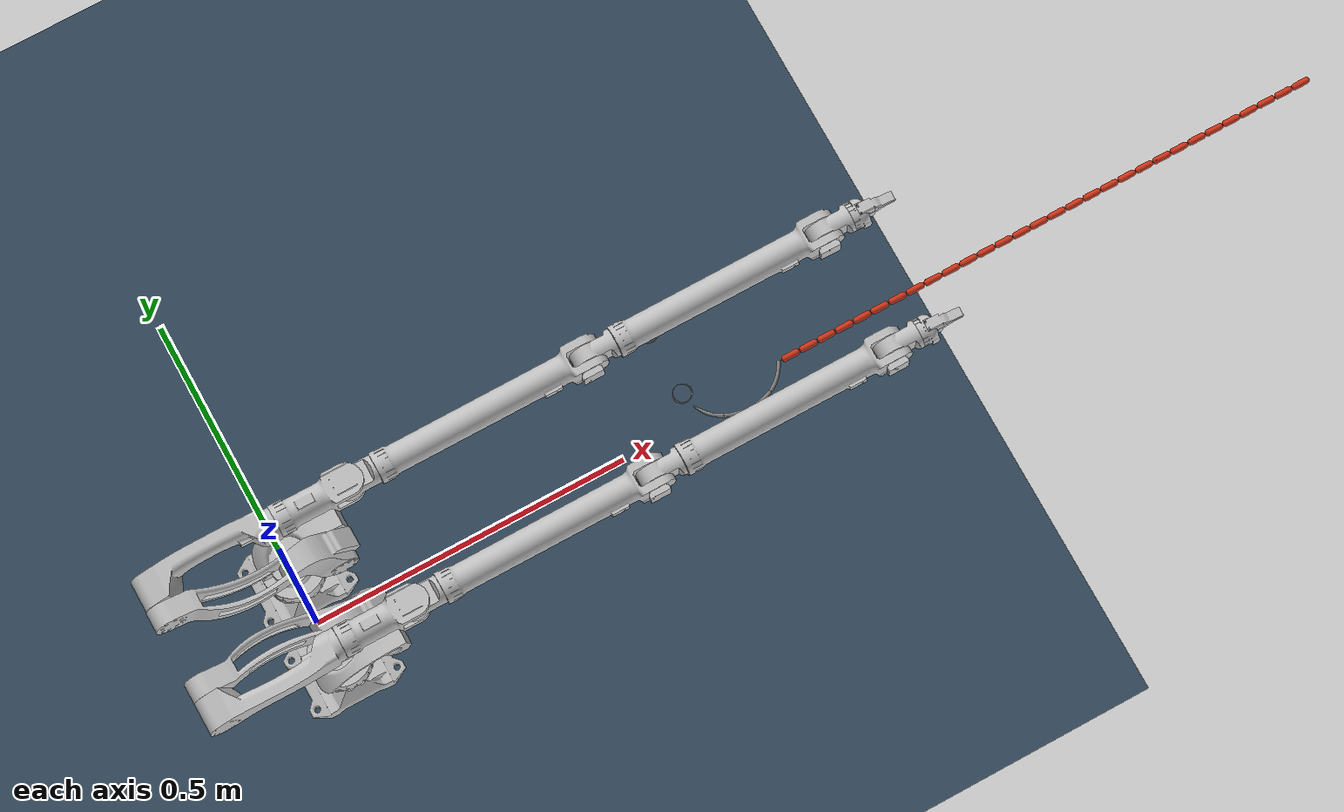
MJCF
<?xml version="1.0" encoding="utf-8"?>
<mujoco>
	<compiler angle="radian" coordinate="local" meshdir="../stls/clamp" texturedir="../textures"></compiler>
	<option timestep="0.002" iterations="20" apirate="200">
		<flag warmstart="enable"></flag>
	</option>

	<include file="shared.xml"></include>

	<asset>
		<include file="shared_asset.xml"></include>

        <texture type="skybox" builtin="gradient" rgb1="0.94 0.97 0.97" rgb2="0.94 0.97 0.97" width="32" height="32"/>
        <texture name="texplane" type="2d" builtin="checker" rgb1=".2 .3 .4" rgb2="0.18 0.25 0.29" width="612" height="612"/>
        <texture name="texgeom" type="cube" builtin="flat" mark="none" width="127" height="1278" rgb1="0.95 0.95 0.95" rgb2="0.95 0.95 0.95" markrgb="1 1 1" random="0.01"/>

		<material name="robot_mat" texture="texgeom" shininess="0.0" specular="0.0" reflectance="0"/>
        <material name="floor_mat" specular="0" shininess="0.0" reflectance="0" texture="texplane" texrepeat="5 5"/>/>
	</asset>

	<worldbody>
		<light directional="true" ambient="0.2 0.2 0.2" diffuse="0.8 0.8 0.8" specular="0.3 0.3 0.3" castshadow="false" pos="0 1 4" dir="0 0 -1" name="light0"></light>

		<geom name="floor0" pos="0 0 0" size="1 1 1" type="plane" condim="3" material="floor_mat"></geom>
		<body name="floor0" pos="1 1 0"></body>

		<include file="robot.xml"></include>
		<include file="needle.xml"></include>

		<body name="target0:in" pos="0.6 0 0.2">
			<geom name="in" type="mesh" mesh="target0:hole" size="1 1" condim="1"></geom>
			<site name="target0:in_center" pos="0 0 0" rgba="1 0 0 0" size="0.013"></site>
		</body>

		<body name="target0:out" pos="0.6 0.1 0.2">
			<geom name="out" type="mesh" mesh="target0:hole" size="1 1" condim="1"></geom>
			<site name="target0:out_center" pos="0 0 0" rgba="1 0 0 0" size="0.013"></site>
		</body>

	</worldbody>

</mujoco>

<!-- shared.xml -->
<mujoco>

    <!-- Classes -->

    <default>
        <default class="robot0:asset_class">
            <geom friction="1 0.005 0.001" condim="3" margin="0.0005" contype="1" conaffinity="1"></geom>
            <joint limited="true" damping="0.1" armature="0.001" margin="0.01" frictionloss="0.001"></joint>
            <site size="0.005" rgba="0.4 0.9 0.4 1"></site>
            <general ctrllimited="true" forcelimited="true"></general>
        </default>

        <default class="robot0:touch">
            <geom rgba="0.75 0.75 0.75 1" contype="1" conaffinity="0"></geom>
        </default>

        <default class="robot0:visual">
            <geom rgba="0.75 0.75 0.75 1" contype="0" conaffinity="0" type="mesh"></geom>
        </default>

    </default>

    <!-- Actuators -->
    <actuator>
        <position name="robot0:A_r_J1" class="robot0:asset_class" joint="robot0:r_J1" ctrlrange="-1.5708 1.5708" kp="5" forcerange="-4.785 4.785"></position>
        <position name="robot0:A_r_J2" class="robot0:asset_class" joint="robot0:r_J2" ctrllimited="false" kp="5" forcerange="-4.785 4.785"></position>
        <position name="robot0:A_r_J3" class="robot0:asset_class" joint="robot0:r_J3" ctrlrange="-1.5708 1.5708" kp="5" forcerange="-4.785 4.785"></position>
        <position name="robot0:A_r_J4" class="robot0:asset_class" joint="robot0:r_J4" ctrllimited="false" kp="5" forcerange="-4.785 4.785"></position>
        <position name="robot0:A_r_J5" class="robot0:asset_class" joint="robot0:r_J5" ctrlrange="-1.5708 1.5708" kp="5" forcerange="-4.785 4.785"></position>
        <position name="robot0:A_r_J6" class="robot0:asset_class" joint="robot0:r_J6" ctrllimited="false" kp="5" forcerange="-4.785 4.785"></position>
        <position name="robot0:A_r_J7_up" class="robot0:asset_class" joint="robot0:r_J7_up" ctrlrange="-3.14 0" kp="5" forcerange="-4.785 4.785"></position>
        <position name="robot0:A_r_J7_bottom" class="robot0:asset_class" joint="robot0:r_J7_bottom" ctrlrange="0 0.34" kp="5" forcerange="-4.785 4.785"></position>

        <position name="robot0:A_l_J1" class="robot0:asset_class" joint="robot0:l_J1" ctrlrange="-1.5708 1.5708" kp="5" forcerange="-4.785 4.785"></position>
        <position name="robot0:A_l_J2" class="robot0:asset_class" joint="robot0:l_J2" ctrllimited="false" kp="5" forcerange="-4.785 4.785"></position>
        <position name="robot0:A_l_J3" class="robot0:asset_class" joint="robot0:l_J3" ctrlrange="-1.5708 1.5708" kp="5" forcerange="-4.785 4.785"></position>
        <position name="robot0:A_l_J4" class="robot0:asset_class" joint="robot0:l_J4" ctrllimited="false" kp="5" forcerange="-4.785 4.785"></position>
        <position name="robot0:A_l_J5" class="robot0:asset_class" joint="robot0:l_J5" ctrlrange="-1.5708 1.5708" kp="5" forcerange="-4.785 4.785"></position>
        <position name="robot0:A_l_J6" class="robot0:asset_class" joint="robot0:l_J6" ctrllimited="false" kp="5" forcerange="-4.785 4.785"></position>
        <position name="robot0:A_l_J7_up" class="robot0:asset_class" joint="robot0:l_J7_up" ctrlrange="-3.14 0" kp="5" forcerange="-4.785 4.785"></position>
        <position name="robot0:A_l_J7_bottom" class="robot0:asset_class" joint="robot0:l_J7_bottom" ctrlrange="0 0.34" kp="5" forcerange="-4.785 4.785"></position>
    </actuator>

    <!-- Contacts -->
    <contact>
        <exclude body1="object:needle" body2="B_0"></exclude>
        <exclude body1="B_0" body2="B_1"></exclude>
        <exclude body1="B_1" body2="B_2"></exclude>
        <exclude body1="B_2" body2="B_3"></exclude>
        <exclude body1="B_3" body2="B_4"></exclude>
        <exclude body1="B_4" body2="B_5"></exclude>
        <exclude body1="B_5" body2="B_6"></exclude>
        <exclude body1="B_6" body2="B_7"></exclude>
        <exclude body1="B_7" body2="B_8"></exclude>
        <exclude body1="B_8" body2="B_9"></exclude>
        <exclude body1="B_9" body2="B_10"></exclude>
        <exclude body1="B_10" body2="B_11"></exclude>
        <exclude body1="B_11" body2="B_12"></exclude>
        <exclude body1="B_12" body2="B_13"></exclude>
        <exclude body1="B_13" body2="B_14"></exclude>
        <exclude body1="B_14" body2="B_15"></exclude>
        <exclude body1="B_15" body2="B_16"></exclude>
        <exclude body1="B_16" body2="B_17"></exclude>
        <exclude body1="B_17" body2="B_18"></exclude>
        <exclude body1="B_18" body2="B_19"></exclude>
        <exclude body1="B_19" body2="B_20"></exclude>
        <exclude body1="B_20" body2="B_21"></exclude>
        <exclude body1="B_21" body2="B_22"></exclude>
        <exclude body1="B_22" body2="B_23"></exclude>
        <exclude body1="B_23" body2="B_24"></exclude>
        <exclude body1="B_24" body2="B_25"></exclude>
        <exclude body1="B_25" body2="B_26"></exclude>
        <exclude body1="B_26" body2="B_27"></exclude>
        <exclude body1="B_27" body2="B_28"></exclude>
        <exclude body1="B_28" body2="B_29"></exclude>
    </contact>

</mujoco>

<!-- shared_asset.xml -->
<mujoco>
        <mesh file="r_roots.stl" scale="0.1 0.1 0.1" name="robot0:r_roots"></mesh>
	<mesh file="r_base.stl" scale="0.1 0.1 0.1" name="robot0:r_base"></mesh>
        <mesh file="r_trunk.stl" scale="0.1 0.1 0.1" name="robot0:r_trunk"></mesh>
	<mesh file="r_hip.stl" scale="0.1 0.1 0.1" name="robot0:r_hip"></mesh>
        <mesh file="r_body.stl" scale="0.1 0.1 0.1" name="robot0:r_body"></mesh>
        <mesh file="r_shoulder.stl" scale="0.1 0.1 0.1" name="robot0:r_shoulder"></mesh>
        <mesh file="r_upper_arm.stl" scale="0.1 0.1 0.1" name="robot0:r_upper_arm"></mesh>
        <mesh file="r_elbow.stl" scale="0.1 0.1 0.1" name="robot0:r_elbow"></mesh>
        <mesh file="r_forearm.stl" scale="0.1 0.1 0.1" name="robot0:r_forearm"></mesh>
        <mesh file="r_wrist.stl" scale="0.1 0.1 0.1" name="robot0:r_wrist"></mesh>
        <mesh file="r_hand.stl" scale="0.1 0.1 0.1" name="robot0:r_hand"></mesh>
	<mesh file="r_t_clamp.stl" scale="0.1 0.1 0.1" name="robot0:r_t_clamp"></mesh>
        <mesh file="r_b_clamp.stl" scale="0.1 0.1 0.1" name="robot0:r_b_clamp"></mesh>

        <mesh file="l_roots.stl" scale="0.1 0.1 0.1" name="robot0:l_roots"></mesh>
        <mesh file="l_base.stl" scale="0.1 0.1 0.1" name="robot0:l_base"></mesh>
        <mesh file="l_trunk.stl" scale="0.1 0.1 0.1" name="robot0:l_trunk"></mesh>
        <mesh file="l_hip.stl" scale="0.1 0.1 0.1" name="robot0:l_hip"></mesh>
        <mesh file="l_body.stl" scale="0.1 0.1 0.1" name="robot0:l_body"></mesh>
        <mesh file="l_shoulder.stl" scale="0.1 0.1 0.1" name="robot0:l_shoulder"></mesh>
        <mesh file="l_upper_arm.stl" scale="0.1 0.1 0.1" name="robot0:l_upper_arm"></mesh>
        <mesh file="l_elbow.stl" scale="0.1 0.1 0.1" name="robot0:l_elbow"></mesh>
        <mesh file="l_forearm.stl" scale="0.1 0.1 0.1" name="robot0:l_forearm"></mesh>
        <mesh file="l_wrist.stl" scale="0.1 0.1 0.1" name="robot0:l_wrist"></mesh>
        <mesh file="l_hand.stl" scale="0.1 0.1 0.1" name="robot0:l_hand"></mesh>
        <mesh file="l_t_clamp.stl" scale="0.1 0.1 0.1" name="robot0:l_t_clamp"></mesh>
        <mesh file="l_b_clamp.stl" scale="0.1 0.1 0.1" name="robot0:l_b_clamp"></mesh>

        <mesh file="tip.stl" scale="0.1 0.1 0.1" name="object0:needle_tip"></mesh>
        <mesh file="handle.stl" scale="0.1 0.1 0.1" name="object0:needle_handle"></mesh>
        <mesh file="first_curve.stl" scale="0.1 0.1 0.1" name="object0:needle_first_curve"></mesh>
        <mesh file="second_curve.stl" scale="0.1 0.1 0.1" name="object0:needle_second_curve"></mesh>

        <mesh file="hole.stl" scale="0.1 0.1 0.1" name="target0:hole"></mesh>
</mujoco>

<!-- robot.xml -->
<mujoco>

	<!-- Right Arm -->
	<body childclass="robot0:asset_class" name="robot0:r_roots">
		<geom mesh="robot0:r_roots" mass="0.1" name="robot0:r_roots" material="robot_mat" class="robot0:visual"></geom>

		<body name="robot0:r_base">
			<geom mesh="robot0:r_base" mass="0.1" name="robot0:r_base" material="robot_mat" class="robot0:visual"></geom>

			<body name="robot0:r_trunk">
				<geom mesh="robot0:r_trunk" mass="0.1" name="robot0:r_trunk" material="robot_mat" class="robot0:visual"></geom>

				<body name="robot0:r_hip">
					<geom mesh="robot0:r_hip" mass="0.1" name="robot0:r_hip" material="robot_mat" class="robot0:visual"></geom>

					<body name="robot0:r_body">
						<geom mesh="robot0:r_body" mass="0.1" name="robot0:r_body" material="robot_mat" class="robot0:visual"></geom>

						<body name="robot0:r_shoulder">
							<joint name="robot0:r_J1" type="hinge" axis="0 0 1" pos="0.125 -0.098 0.23" damping="0.5" armature="0.005" range="-1.5708 1.5708"/>
							<geom class="robot0:visual" mass="0.001" name="robot0:r_shoulder" material="robot_mat" mesh="robot0:r_shoulder"></geom>
							<body name="robot0:r_upper_arm">
								<geom mesh="robot0:r_upper_arm" name="robot0:r_upper_arm" material="robot_mat" class="robot0:visual"></geom>

								<joint name="robot0:r_J2" type="hinge" axis="1 0 0" pos="0.16 -0.098 0.265" damping="0.5" armature="0.005" limited="false"/>
								<body name="robot0:r_elbow">
									<geom mesh="robot0:r_elbow" mass="0.001" name="robot0:r_elbow" material="robot_mat" class="robot0:visual"></geom>

									<joint name="robot0:r_J3" type="hinge" axis="0 1 0" pos="0.501 -0.13 0.271" damping="0.5" armature="0.005" range="-1.5708 1.5708"/>
									<body name="robot0:r_forearm">
										<geom mesh="robot0:r_forearm" mass="0.001" name="robot0:r_forearm" material="robot_mat" class="robot0:visual"></geom>

										<joint name="robot0:r_J4" type="hinge" axis="1 0 0" pos="0.515 -0.098 0.265" damping="0.5" armature="0.005" limited="false"/>
										<body name="robot0:r_wrist">
											<geom mesh="robot0:r_wrist" mass="0.001" name="robot0:r_wrist" material="robot_mat" class="robot0:visual"></geom>

											<joint name="robot0:r_J5" type="hinge" axis="0 1 0" pos="0.874 -0.13 0.268" damping="0.5" armature="0.005" range="-1.5708 1.5708"/>
											<body name="robot0:r_hand">
												<geom mesh="robot0:r_hand" mass="0.001" name="robot0:r_hand" material="robot_mat" class="robot0:visual"></geom>

												<joint name="robot0:r_J6" type="hinge" axis="1 0 0" pos="0.9 -0.098 0.265" damping="0.5" armature="0.005" limited="false"/>

												<body name="robot0:r_t_clamp">
													<geom mesh="robot0:r_t_clamp" mass="0.001" name="robot0:r_t_clamp" condim="4" friction="1 0.05 0.01" material="robot_mat" class="robot0:visual"></geom>
													<geom class="robot0:touch" name="robot0:C_r_t_clamp" type="capsule" pos="0.973 -0.099 0.275" size="0.01 0.01" euler="0 -1.5708 0" rgba="0.75 0.75 0.75 0"></geom>
													<joint name="robot0:r_J7_up" type="hinge" axis="0 1 0" pos="0.93 -0.13 0.271" damping="0.5" armature="0.005" range="-0.34 0"/>
												</body>

												<body name="robot0:r_b_clamp">
													<geom mesh="robot0:r_b_clamp" mass="0.001" name="robot0:r_b_clamp" condim="4" friction="1 0.05 0.01" material="robot_mat" class="robot0:visual"></geom>
													<geom class="robot0:touch" name="robot0:C_r_b_clamp" type="capsule" pos="0.973 -0.099 0.255" size="0.01 0.01" euler="0 -1.5708 0" rgba="0.75 0.75 0.75 0"></geom>
													<joint name="robot0:r_J7_bottom" type="hinge" axis="0 1 0" pos="0.93 -0.13 0.271" damping="0.5" armature="0.005" range="0 0.34"/>
												</body>
											</body>
										</body>
									</body>
								</body>
							</body>
						</body>
					</body>
				</body>
			</body>
		</body>
	</body>

	<!-- Left Arm -->
	<body childclass="robot0:asset_class" name="robot0:l_roots">
		<geom mesh="robot0:l_roots" mass="0.1" name="robot0:l_roots" material="robot_mat" class="robot0:visual"></geom>

		<body name="robot0:l_base">
			<geom mesh="robot0:l_base" mass="0.1" name="robot0:l_base" material="robot_mat" class="robot0:visual"></geom>

			<body name="robot0:l_trunk">
				<geom mesh="robot0:l_trunk" mass="0.1" name="robot0:l_trunk" material="robot_mat" class="robot0:visual"></geom>

				<body name="robot0:l_hip">
					<geom mesh="robot0:l_hip" mass="0.1" name="robot0:l_hip" material="robot_mat" class="robot0:visual"></geom>

					<body name="robot0:l_body">
						<geom mesh="robot0:l_body" mass="0.1" name="robot0:l_body" material="robot_mat" class="robot0:visual"></geom>

						<body name="robot0:l_shoulder">
							<joint name="robot0:l_J1" type="hinge" axis="0 0 1" pos="0.125 0.098 0.23" damping="0.5" armature="0.005" range="-1.5708 1.5708"/>
							<geom class="robot0:visual" mass="0.001" name="robot0:l_shoulder" material="robot_mat" mesh="robot0:l_shoulder"></geom>
							<body name="robot0:l_upper_arm">
								<geom mesh="robot0:l_upper_arm" name="robot0:l_upper_arm" material="robot_mat" class="robot0:visual"></geom>

								<joint name="robot0:l_J2" type="hinge" axis="1 0 0" pos="0.16 0.098 0.265" damping="0.5" armature="0.005" limited="false"/>
								<body name="robot0:l_elbow">
									<geom mesh="robot0:l_elbow" mass="0.001" name="robot0:l_elbow" material="robot_mat" class="robot0:visual"></geom>

									<joint name="robot0:l_J3" type="hinge" axis="0 1 0" pos="0.501 0.08 0.271" damping="0.5" armature="0.005" range="-1.5708 1.5708"/>
									<body name="robot0:l_forearm">
										<geom mesh="robot0:l_forearm" mass="0.001" name="robot0:l_forearm" material="robot_mat" class="robot0:visual"></geom>

										<joint name="robot0:l_J4" type="hinge" axis="1 0 0" pos="0.515 0.098 0.265" damping="0.5" armature="0.005" limited="false"/>
										<body name="robot0:l_wrist">
											<geom mesh="robot0:l_wrist" mass="0.001" name="robot0:l_wrist" material="robot_mat" class="robot0:visual"></geom>

											<joint name="robot0:l_J5" type="hinge" axis="0 1 0" pos="0.874 0.08 0.268" damping="0.5" armature="0.005" range="-1.5708 1.5708"/>
											<body name="robot0:l_hand">
												<geom mesh="robot0:l_hand" mass="0.001" name="robot0:l_hand" material="robot_mat" class="robot0:visual"></geom>

												<joint name="robot0:l_J6" type="hinge" axis="1 0 0" pos="0.9 0.098 0.265" damping="0.5" armature="0.005" limited="false"/>

												<body name="robot0:l_t_clamp">
													<geom mesh="robot0:l_t_clamp" mass="0.001" name="robot0:l_t_clamp" condim="4" friction="1 0.05 0.01" material="robot_mat" class="robot0:visual"></geom>
													<geom class="robot0:touch" name="robot0:C_l_t_clamp" type="capsule" pos="0.973 0.099 0.275" size="0.01 0.01" euler="0 -1.5708 0" rgba="0.75 0.75 0.75 0"></geom>
													<joint name="robot0:l_J7_up" type="hinge" axis="0 1 0" pos="0.93 0.08 0.271" damping="0.5" armature="0.005" range="-0.34 0"/>
												</body>

												<body name="robot0:l_b_clamp">
													<geom mesh="robot0:l_b_clamp" mass="0.001" name="robot0:l_b_clamp" condim="4" friction="1 0.05 0.01" material="robot_mat" class="robot0:visual"></geom>
													<geom class="robot0:touch" name="robot0:C_l_b_clamp" type="capsule" pos="0.973 0.099 0.255" size="0.01 0.01" euler="0 -1.5708 0" rgba="0.75 0.75 0.75 0"></geom>
													<joint name="robot0:l_J7_bottom" type="hinge" axis="0 1 0" pos="0.93 0.08 0.271" damping="0.5" armature="0.005" range="0 0.34"/>
												</body>
											</body>
										</body>
									</body>
								</body>
							</body>
						</body>
					</body>
				</body>
			</body>
		</body>
	</body>

</mujoco>

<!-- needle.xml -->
<mujoco>
	<body name="object:needle" pos="0.7 0 0">
		<joint type="free" name="object:joint"/>
		<geom name="object:handle" type="mesh" mesh="object0:needle_handle" size="1 1" mass="0.001" condim="1"></geom>
		<geom name="object:first_curve" type="mesh" mesh="object0:needle_first_curve" mass="0.001" size="1 1" condim="1"></geom>
		<geom name="object:second_curve" type="mesh" mesh="object0:needle_second_curve" mass="0.001" size="1 1" condim="1"></geom>
		<geom name="object:tip" type="mesh" mesh="object0:needle_tip" size="1 1" mass="0.001" condim="1"></geom>

		<!-- Rope for MuJoCo 2.0 -->

		<!-- Rope for MuJoCo <= 1.5 -->
		<body name="B_0">
			<joint type="hinge" damping="0.0025" axis="0 1 0" pos="0.075 0.020 0"></joint>
			<joint type="hinge" damping="0.0025" axis="0 0 1" pos="0.075 0.020 0"></joint>
			<geom type="capsule" size="0.005 0.01" rgba=".8 .2 .1 1" mass="0.0001" pos="0.090 0.020 0" euler="0 1.5708 0"/>
			<body name="B_1">
				<joint type="hinge" damping="0.0025" axis="0 1 0" pos="0.105 0.020 0"></joint>
				<joint type="hinge" damping="0.0025" axis="0 0 1" pos="0.105 0.020 0"></joint>
				<geom type="capsule" size="0.005 0.01" rgba=".8 .2 .1 1" mass="0.0001" pos="0.12 0.020 0" euler="0 1.5708 0"/>
				<body name="B_2">
					<joint type="hinge" damping="0.0025" axis="0 1 0" pos="0.135 0.020 0"></joint>
					<joint type="hinge" damping="0.0025" axis="0 0 1" pos="0.135 0.020 0"></joint>
					<geom type="capsule" size="0.005 0.01" rgba=".8 .2 .1 1" mass="0.0001" pos="0.15 0.020 0" euler="0 1.5708 0"/>
					<body name="B_3">
						<joint type="hinge" damping="0.0025" axis="0 1 0" pos="0.165 0.020 0"></joint>
						<joint type="hinge" damping="0.0025" axis="0 0 1" pos="0.165 0.020 0"></joint>
						<geom type="capsule" size="0.005 0.01" rgba=".8 .2 .1 1" mass="0.0001" pos="0.18 0.020 0" euler="0 1.5708 0"/>
						<body name="B_4">
							<joint type="hinge" damping="0.0025" axis="0 1 0" pos="0.195 0.020 0"></joint>
							<joint type="hinge" damping="0.0025" axis="0 0 1" pos="0.195 0.020 0"></joint>
							<geom type="capsule" size="0.005 0.01" rgba=".8 .2 .1 1" mass="0.0001" pos="0.21 0.020 0" euler="0 1.5708 0"/>
							<body name="B_5">
								<joint type="hinge" damping="0.0025" axis="0 1 0" pos="0.225 0.020 0"></joint>
								<joint type="hinge" damping="0.0025" axis="0 0 1" pos="0.225 0.020 0"></joint>
								<geom type="capsule" size="0.005 0.01" rgba=".8 .2 .1 1" mass="0.0001" pos="0.24 0.020 0" euler="0 1.5708 0"/>
								<body name="B_6">
									<joint type="hinge" damping="0.0025" axis="0 1 0" pos="0.255 0.020 0"></joint>
									<joint type="hinge" damping="0.0025" axis="0 0 1" pos="0.255 0.020 0"></joint>
									<geom type="capsule" size="0.005 0.01" rgba=".8 .2 .1 1" mass="0.0001" pos="0.27 0.020 0" euler="0 1.5708 0"/>
									<body name="B_7">
										<joint type="hinge" damping="0.0025" axis="0 1 0" pos="0.285 0.020 0"></joint>
										<joint type="hinge" damping="0.0025" axis="0 0 1" pos="0.285 0.020 0"></joint>
										<geom type="capsule" size="0.005 0.01" rgba=".8 .2 .1 1" mass="0.0001" pos="0.30 0.020 0" euler="0 1.5708 0"/>
										<body name="B_8">
											<joint type="hinge" damping="0.0025" axis="0 1 0" pos="0.315 0.020 0"></joint>
											<joint type="hinge" damping="0.0025" axis="0 0 1" pos="0.315 0.020 0"></joint>
											<geom type="capsule" size="0.005 0.01" rgba=".8 .2 .1 1" mass="0.0001" pos="0.33 0.020 0" euler="0 1.5708 0"/>
											<body name="B_9">
												<joint type="hinge" damping="0.0025" axis="0 1 0" pos="0.335 0.020 0"></joint>
												<joint type="hinge" damping="0.0025" axis="0 0 1" pos="0.335 0.020 0"></joint>
												<geom type="capsule" size="0.005 0.01" rgba=".8 .2 .1 1" mass="0.0001" pos="0.36 0.020 0" euler="0 1.5708 0"/>
												<body name="B_10">
													<joint type="hinge" damping="0.0025" axis="0 1 0" pos="0.365 0.020 0"></joint>
													<joint type="hinge" damping="0.0025" axis="0 0 1" pos="0.365 0.020 0"></joint>
													<geom type="capsule" size="0.005 0.01" rgba=".8 .2 .1 1" mass="0.0001" pos="0.39 0.020 0" euler="0 1.5708 0"/>
													<body name="B_11">
														<joint type="hinge" damping="0.0025" axis="0 1 0" pos="0.395 0.020 0"></joint>
														<joint type="hinge" damping="0.0025" axis="0 0 1" pos="0.395 0.020 0"></joint>
														<geom type="capsule" size="0.005 0.01" rgba=".8 .2 .1 1" mass="0.0001" pos="0.42 0.020 0" euler="0 1.5708 0"/>
														<body name="B_12">
															<joint type="hinge" damping="0.0025" axis="0 1 0" pos="0.425 0.020 0"></joint>
															<joint type="hinge" damping="0.0025" axis="0 0 1" pos="0.425 0.020 0"></joint>
															<geom type="capsule" size="0.005 0.01" rgba=".8 .2 .1 1" mass="0.0001" pos="0.45 0.020 0" euler="0 1.5708 0"/>
															<body name="B_13">
																<joint type="hinge" damping="0.0025" axis="0 1 0" pos="0.455 0.020 0"></joint>
																<joint type="hinge" damping="0.0025" axis="0 0 1" pos="0.455 0.020 0"></joint>
																<geom type="capsule" size="0.005 0.01" rgba=".8 .2 .1 1" mass="0.0001" pos="0.48 0.020 0" euler="0 1.5708 0"/>
																<body name="B_14">
																	<joint type="hinge" damping="0.0025" axis="0 1 0" pos="0.485 0.020 0"></joint>
																	<joint type="hinge" damping="0.0025" axis="0 0 1" pos="0.485 0.020 0"></joint>
																	<geom type="capsule" size="0.005 0.01" rgba=".8 .2 .1 1" mass="0.0001" pos="0.51 0.020 0" euler="0 1.5708 0"/>
																	<body name="B_15">
																		<joint type="hinge" damping="0.0025" axis="0 1 0" pos="0.515 0.020 0"></joint>
																		<joint type="hinge" damping="0.0025" axis="0 0 1" pos="0.515 0.020 0"></joint>
																		<geom type="capsule" size="0.005 0.01" rgba=".8 .2 .1 1" mass="0.0001" pos="0.54 0.020 0" euler="0 1.5708 0"/>
																		<body name="B_16">
																			<joint type="hinge" damping="0.0025" axis="0 1 0" pos="0.545 0.020 0"></joint>
																			<joint type="hinge" damping="0.0025" axis="0 0 1" pos="0.545 0.020 0"></joint>
																			<geom type="capsule" size="0.005 0.01" rgba=".8 .2 .1 1" mass="0.0001" pos="0.57 0.020 0" euler="0 1.5708 0"/>
																			<body name="B_17">
																				<joint type="hinge" damping="0.0025" axis="0 1 0" pos="0.575 0.020 0"></joint>
																				<joint type="hinge" damping="0.0025" axis="0 0 1" pos="0.575 0.020 0"></joint>
																				<geom type="capsule" size="0.005 0.01" rgba=".8 .2 .1 1" mass="0.0001" pos="0.60 0.020 0" euler="0 1.5708 0"/>
																				<body name="B_18">
																					<joint type="hinge" damping="0.0025" axis="0 1 0" pos="0.605 0.020 0"></joint>
																					<joint type="hinge" damping="0.0025" axis="0 0 1" pos="0.605 0.020 0"></joint>
																					<geom type="capsule" size="0.005 0.01" rgba=".8 .2 .1 1" mass="0.0001" pos="0.63 0.020 0" euler="0 1.5708 0"/>
																					<body name="B_19">
																						<joint type="hinge" damping="0.0025" axis="0 1 0" pos="0.635 0.020 0"></joint>
																						<joint type="hinge" damping="0.0025" axis="0 0 1" pos="0.635 0.020 0"></joint>
																						<geom type="capsule" size="0.005 0.01" rgba=".8 .2 .1 1" mass="0.0001" pos="0.66 0.020 0" euler="0 1.5708 0"/>
																						<body name="B_20">
																							<joint type="hinge" damping="0.0025" axis="0 1 0" pos="0.665 0.020 0"></joint>
																							<joint type="hinge" damping="0.0025" axis="0 0 1" pos="0.665 0.020 0"></joint>
																							<geom type="capsule" size="0.005 0.01" rgba=".8 .2 .1 1" mass="0.0001" pos="0.69 0.020 0" euler="0 1.5708 0"/>
																							<body name="B_21">
																								<joint type="hinge" damping="0.0025" axis="0 1 0" pos="0.695 0.020 0"></joint>
																								<joint type="hinge" damping="0.0025" axis="0 0 1" pos="0.695 0.020 0"></joint>
																								<geom type="capsule" size="0.005 0.01" rgba=".8 .2 .1 1" mass="0.0001" pos="0.72 0.020 0" euler="0 1.5708 0"/>
																								<body name="B_22">
																									<joint type="hinge" damping="0.0025" axis="0 1 0" pos="0.725 0.020 0"></joint>
																									<joint type="hinge" damping="0.0025" axis="0 0 1" pos="0.725 0.020 0"></joint>
																									<geom type="capsule" size="0.005 0.01" rgba=".8 .2 .1 1" mass="0.0001" pos="0.75 0.020 0" euler="0 1.5708 0"/>
																									<body name="B_23">
																										<joint type="hinge" damping="0.0025" axis="0 1 0" pos="0.755 0.020 0"></joint>
																										<joint type="hinge" damping="0.0025" axis="0 0 1" pos="0.755 0.020 0"></joint>
																										<geom type="capsule" size="0.005 0.01" rgba=".8 .2 .1 1" mass="0.0001" pos="0.78 0.020 0" euler="0 1.5708 0"/>
																										<body name="B_24">
																											<joint type="hinge" damping="0.0025" axis="0 1 0" pos="0.785 0.020 0"></joint>
																											<joint type="hinge" damping="0.0025" axis="0 0 1" pos="0.785 0.020 0"></joint>
																											<geom type="capsule" size="0.005 0.01" rgba=".8 .2 .1 1" mass="0.0001" pos="0.81 0.020 0" euler="0 1.5708 0"/>
																											<body name="B_25">
																												<joint type="hinge" damping="0.0025" axis="0 1 0" pos="0.815 0.020 0"></joint>
																												<joint type="hinge" damping="0.0025" axis="0 0 1" pos="0.815 0.020 0"></joint>
																												<geom type="capsule" size="0.005 0.01" rgba=".8 .2 .1 1" mass="0.0001" pos="0.84 0.020 0" euler="0 1.5708 0"/>
																												<body name="B_26">
																													<joint type="hinge" damping="0.0025" axis="0 1 0" pos="0.845 0.020 0"></joint>
																													<joint type="hinge" damping="0.0025" axis="0 0 1" pos="0.845 0.020 0"></joint>
																													<geom type="capsule" size="0.005 0.01" rgba=".8 .2 .1 1" mass="0.0001" pos="0.87 0.020 0" euler="0 1.5708 0"/>
																													<body name="B_27">
																														<joint type="hinge" damping="0.0025" axis="0 1 0" pos="0.875 0.020 0"></joint>
																														<joint type="hinge" damping="0.0025" axis="0 0 1" pos="0.875 0.020 0"></joint>
																														<geom type="capsule" size="0.005 0.01" rgba=".8 .2 .1 1" mass="0.0001" pos="0.90 0.020 0" euler="0 1.5708 0"/>
																														<body name="B_28">
																															<joint type="hinge" damping="0.0025" axis="0 1 0" pos="0.905 0.020 0"></joint>
																															<joint type="hinge" damping="0.0025" axis="0 0 1" pos="0.905 0.020 0"></joint>
																															<geom type="capsule" size="0.005 0.01" rgba=".8 .2 .1 1" mass="0.0001" pos="0.93 0.020 0" euler="0 1.5708 0"/>
																															<body name="B_29">
																																<joint type="hinge" damping="0.0025" axis="0 1 0" pos="0.935 0.020 0"></joint>
																																<joint type="hinge" damping="0.0025" axis="0 0 1" pos="0.935 0.020 0"></joint>
																																<geom type="capsule" size="0.005 0.01" rgba=".8 .2 .1 1" mass="0.0001" pos="0.96 0.020 0" euler="0 1.5708 0"/>
																															</body>
																														</body>
																													</body>
																												</body>
																											</body>
																										</body>
																									</body>
																								</body>
																							</body>
																						</body>
																					</body>
																				</body>
																			</body>
																		</body>
																	</body>
																</body>
															</body>
														</body>
													</body>
												</body>
											</body>
										</body>
									</body>
								</body>
							</body>
						</body>
					</body>
				</body>
			</body>
		</body>

		<site name="object:center" pos="0 -0.0225 0" rgba="1 0 0 0" size="0.0081"></site>
		<site name="object:top" pos="-0.07 0.015 0" rgba="1 0 0 0" size="0.0081"></site>
		<site name="object:bottom" pos="0.069 0.020 0" rgba="1 0 0 0" size="0.0081"></site>

	</body>
</mujoco>
